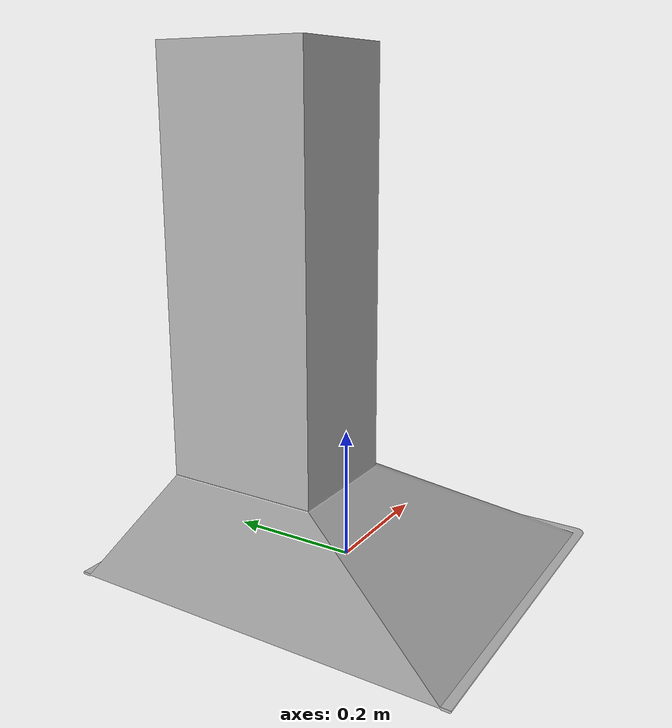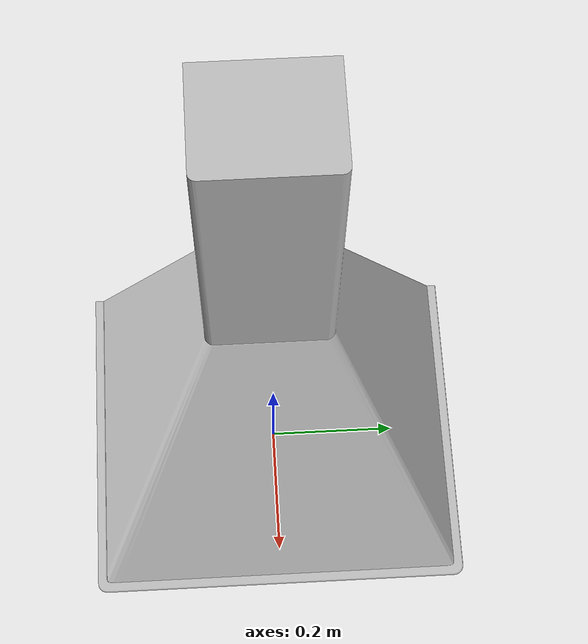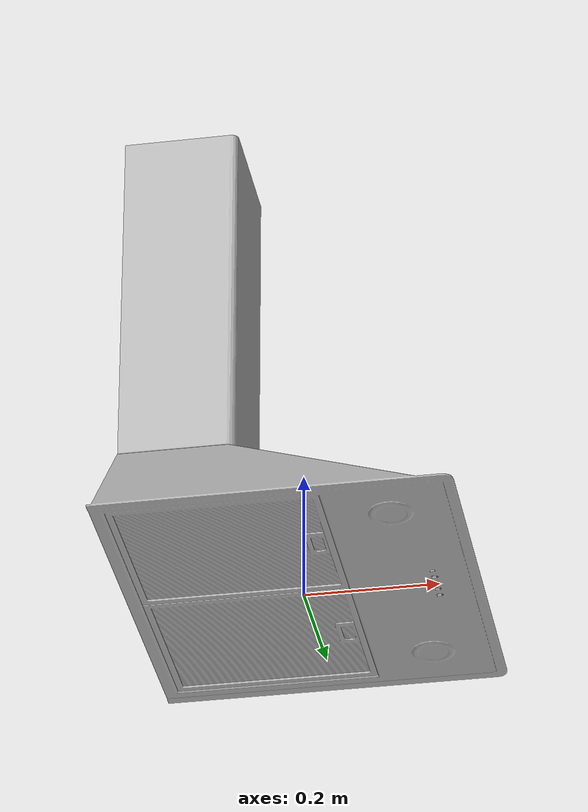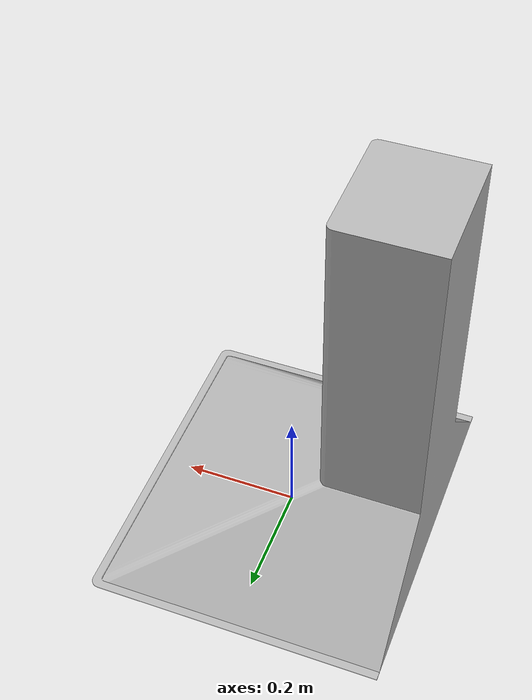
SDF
<?xml version='1.0'?>
<sdf version='1.4'>
  <model name='s__871'>
    <pose>0 0 0 0 0 0</pose>
    <static>true</static>
    <link name='link'>
      <collision name='collision'>
        <pose>0 0 0 0 0 0</pose>
        <geometry>
          <box>
            <size>0.52 0.6 2</size>
          </box>
        </geometry>
      </collision>
      <visual name='visual'>
        <pose>0 0 0 0 0 0</pose>
        <geometry>
          <mesh><uri>model://s__871/s__871.dae</uri></mesh>
        </geometry>
      </visual>
    </link>
  </model>
</sdf>
